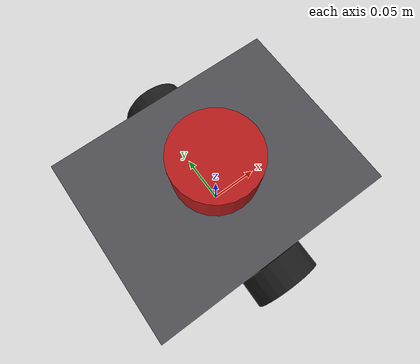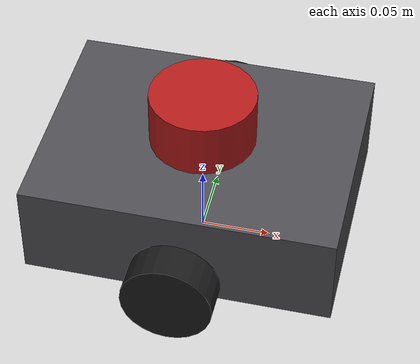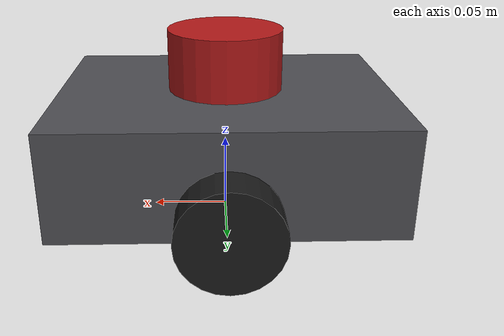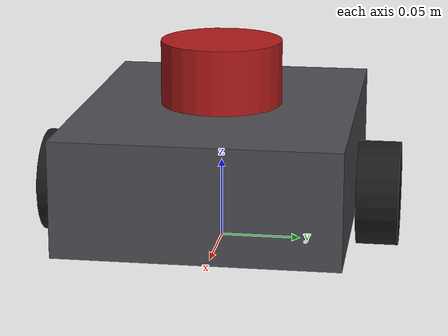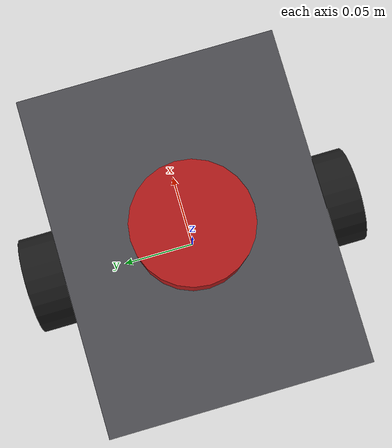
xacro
<?xml version="1.0"?>
<robot name="casabot" xmlns:xacro="http://www.ros.org/wiki/xacro">

  <!-- Set these to match the chassis you actually build. -->
  <xacro:arg name="use_sim" default="false"/>
  <xacro:property name="wheel_radius"     value="0.0325"/>
  <xacro:property name="wheel_width"      value="0.026"/>
  <xacro:property name="wheel_separation" value="0.20"/>
  <xacro:property name="base_length"      value="0.22"/>
  <xacro:property name="base_width"       value="0.17"/>
  <xacro:property name="base_height"      value="0.07"/>
  <xacro:property name="base_clearance"   value="0.02"/>
  <xacro:property name="base_mass"        value="1.6"/>
  <xacro:property name="wheel_mass"       value="0.05"/>
  <xacro:property name="com_x"            value="-0.04"/>
  <xacro:property name="caster_radius"    value="${base_clearance/2 + 0.005}"/>

  <material name="grey"><color rgba="0.3 0.3 0.32 1"/></material>
  <material name="dark"><color rgba="0.1 0.1 0.1 1"/></material>
  <material name="red"><color rgba="0.7 0.1 0.1 1"/></material>

  <xacro:macro name="box_inertia" params="m x y z ox:=0">
    <inertial>
      <origin xyz="${ox} 0 0"/>
      <mass value="${m}"/>
      <inertia ixx="${m*(y*y+z*z)/12}" iyy="${m*(x*x+z*z)/12}" izz="${m*(x*x+y*y)/12}"
               ixy="0" ixz="0" iyz="0"/>
    </inertial>
  </xacro:macro>

  <!-- base_footprint sits on the floor; everything Nav2 reasons about hangs off it. -->
  <link name="base_footprint"/>

  <link name="base_link">
    <visual>
      <geometry><box size="${base_length} ${base_width} ${base_height}"/></geometry>
      <material name="grey"/>
    </visual>
    <collision>
      <geometry><box size="${base_length} ${base_width} ${base_height}"/></geometry>
    </collision>
    <xacro:box_inertia m="${base_mass}" x="${base_length}" y="${base_width}" z="${base_height}" ox="${com_x}"/>
  </link>

  <joint name="base_footprint_joint" type="fixed">
    <parent link="base_footprint"/>
    <child link="base_link"/>
    <origin xyz="0 0 ${wheel_radius + base_clearance}"/>
  </joint>

  <xacro:macro name="wheel" params="side reflect">
    <link name="${side}_wheel_link">
      <visual>
        <origin rpy="${pi/2} 0 0"/>
        <geometry><cylinder radius="${wheel_radius}" length="${wheel_width}"/></geometry>
        <material name="dark"/>
      </visual>
      <collision>
        <origin rpy="${pi/2} 0 0"/>
        <geometry><cylinder radius="${wheel_radius}" length="${wheel_width}"/></geometry>
      </collision>
      <inertial>
        <mass value="${wheel_mass}"/>
        <inertia ixx="${wheel_mass*(3*wheel_radius*wheel_radius+wheel_width*wheel_width)/12}"
                 iyy="${wheel_mass*(3*wheel_radius*wheel_radius+wheel_width*wheel_width)/12}"
                 izz="${wheel_mass*wheel_radius*wheel_radius/2}"
                 ixy="0" ixz="0" iyz="0"/>
      </inertial>
    </link>
    <joint name="${side}_wheel_joint" type="continuous">
      <parent link="base_link"/>
      <child link="${side}_wheel_link"/>
      <origin xyz="0 ${reflect * wheel_separation/2} ${-base_clearance}"/>
      <axis xyz="0 1 0"/>
    </joint>
  </xacro:macro>

  <xacro:wheel side="left"  reflect="1"/>
  <xacro:wheel side="right" reflect="-1"/>

  <!-- Single rear ball caster. Modelled as a sphere so it slides in sim. -->
  <link name="caster_link">
    <visual><geometry><sphere radius="${caster_radius}"/></geometry><material name="dark"/></visual>
    <collision><geometry><sphere radius="${caster_radius}"/></geometry></collision>
    <inertial><mass value="0.02"/><inertia ixx="1e-5" iyy="1e-5" izz="1e-5" ixy="0" ixz="0" iyz="0"/></inertial>
  </link>
  <joint name="caster_joint" type="fixed">
    <parent link="base_link"/>
    <child link="caster_link"/>
    <!-- Bottom of the sphere exactly on the floor, level with the wheel
         contacts. Any offset here is a permanent tilt of the lidar. -->
    <origin xyz="${-base_length/2 + 0.03} 0 ${caster_radius - wheel_radius - base_clearance}"/>
  </joint>

  <link name="lidar_link">
    <visual><geometry><cylinder radius="0.038" length="0.04"/></geometry><material name="red"/></visual>
    <collision><geometry><cylinder radius="0.038" length="0.04"/></geometry></collision>
    <inertial><mass value="0.19"/><inertia ixx="1e-4" iyy="1e-4" izz="1e-4" ixy="0" ixz="0" iyz="0"/></inertial>
  </link>
  <joint name="lidar_joint" type="fixed">
    <parent link="base_link"/>
    <child link="lidar_link"/>
    <origin xyz="0 0 ${base_height/2 + 0.02}"/>
  </joint>

  <link name="imu_link">
    <inertial><mass value="0.005"/><inertia ixx="1e-7" iyy="1e-7" izz="1e-7" ixy="0" ixz="0" iyz="0"/></inertial>
  </link>
  <joint name="imu_joint" type="fixed">
    <parent link="base_link"/>
    <child link="imu_link"/>
    <origin xyz="0.04 0 ${base_height/2}"/>
  </joint>

  <xacro:if value="$(arg use_sim)">
    <xacro:include filename="$(find casabot)/urdf/gazebo.xacro"/>
  </xacro:if>

</robot>
